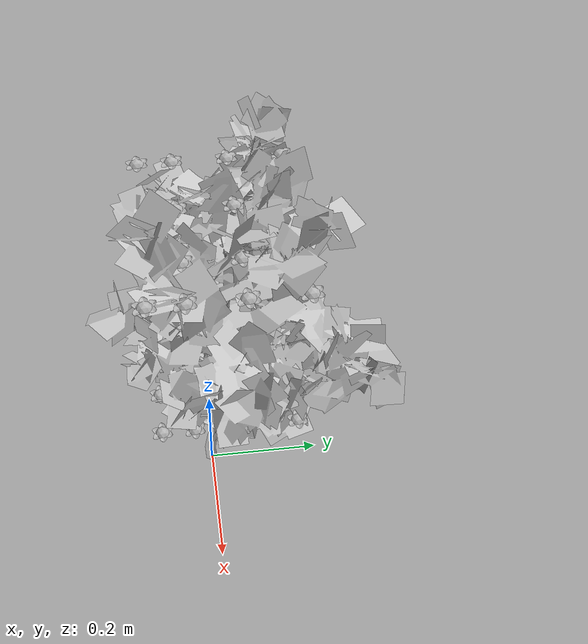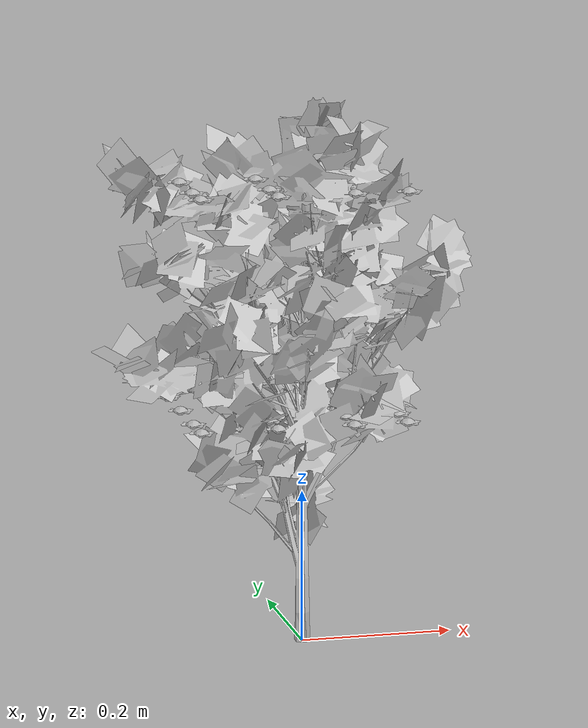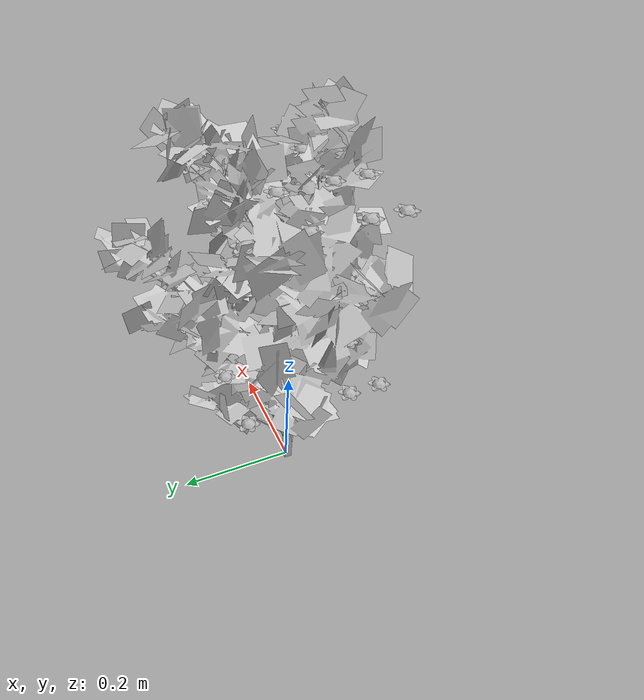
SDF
<?xml version="1.0" ?>
<sdf version="1.6">
  <model name="tree-flowers">
    <!--Skew-boundary-->
    <static>true</static>
    <link name="link"/>
    <include>
      <uri>model://tree-mesh</uri>
      <pose>0 0 0 0 0 0</pose>
    </include>
    <joint name="tree_joint" type="fixed">
      <child>tree-mesh::link</child>
      <parent>link</parent>
    </joint>
    <include>
      <name>bramble_0</name>
      <uri>model://bramble</uri>
      <pose> -0.15 -0.08 0.3 0 0 0</pose>
    </include>
    <joint name="flower_joint_0" type="fixed">
      <child>bramble_0::flower_link</child>
      <parent>link</parent>
    </joint>
    <include>
      <name>bramble_1</name>
      <uri>model://bramble</uri>
      <pose> -0.15 -0.08 0.6 0 0 0</pose>
    </include>
    <joint name="flower_joint_1" type="fixed">
      <child>bramble_1::flower_link</child>
      <parent>link</parent>
    </joint>
    <include>
      <name>bramble_2</name>
      <uri>model://bramble</uri>
      <pose> -0.15 -0.03 0.3 0 0 0</pose>
    </include>
    <joint name="flower_joint_2" type="fixed">
      <child>bramble_2::flower_link</child>
      <parent>link</parent>
    </joint>
    <include>
      <name>bramble_3</name>
      <uri>model://bramble</uri>
      <pose> -0.15 -0.03 0.6 0 0 0</pose>
    </include>
    <joint name="flower_joint_3" type="fixed">
      <child>bramble_3::flower_link</child>
      <parent>link</parent>
    </joint>
    <include>
      <name>bramble_4</name>
      <uri>model://bramble</uri>
      <pose> -0.15 0.05 0.3 0 0 0</pose>
    </include>
    <joint name="flower_joint_4" type="fixed">
      <child>bramble_4::flower_link</child>
      <parent>link</parent>
    </joint>
    <include>
      <name>bramble_5</name>
      <uri>model://bramble</uri>
      <pose> -0.15 0.05 0.6 0 0 0</pose>
    </include>
    <joint name="flower_joint_5" type="fixed">
      <child>bramble_5::flower_link</child>
      <parent>link</parent>
    </joint>
    <include>
      <name>bramble_6</name>
      <uri>model://bramble</uri>
      <pose> -0.15 0.13 0.3 0 0 0</pose>
    </include>
    <joint name="flower_joint_6" type="fixed">
      <child>bramble_6::flower_link</child>
      <parent>link</parent>
    </joint>
    <include>
      <name>bramble_7</name>
      <uri>model://bramble</uri>
      <pose> -0.15 0.13 0.6 0 0 0</pose>
    </include>
    <joint name="flower_joint_7" type="fixed">
      <child>bramble_7::flower_link</child>
      <parent>link</parent>
    </joint>
    <include>
      <name>bramble_8</name>
      <uri>model://bramble</uri>
      <pose> -0.05 -0.08 0.3 0 0 0</pose>
    </include>
    <joint name="flower_joint_8" type="fixed">
      <child>bramble_8::flower_link</child>
      <parent>link</parent>
    </joint>
    <include>
      <name>bramble_9</name>
      <uri>model://bramble</uri>
      <pose> -0.05 -0.08 0.6 0 0 0</pose>
    </include>
    <joint name="flower_joint_9" type="fixed">
      <child>bramble_9::flower_link</child>
      <parent>link</parent>
    </joint>
    <include>
      <name>bramble_10</name>
      <uri>model://bramble</uri>
      <pose> -0.05 -0.03 0.3 0 0 0</pose>
    </include>
    <joint name="flower_joint_10" type="fixed">
      <child>bramble_10::flower_link</child>
      <parent>link</parent>
    </joint>
    <include>
      <name>bramble_11</name>
      <uri>model://bramble</uri>
      <pose> -0.05 -0.03 0.6 0 0 0</pose>
    </include>
    <joint name="flower_joint_11" type="fixed">
      <child>bramble_11::flower_link</child>
      <parent>link</parent>
    </joint>
    <include>
      <name>bramble_12</name>
      <uri>model://bramble</uri>
      <pose> -0.05 0.05 0.3 0 0 0</pose>
    </include>
    <joint name="flower_joint_12" type="fixed">
      <child>bramble_12::flower_link</child>
      <parent>link</parent>
    </joint>
    <include>
      <name>bramble_13</name>
      <uri>model://bramble</uri>
      <pose> -0.05 0.05 0.6 0 0 0</pose>
    </include>
    <joint name="flower_joint_13" type="fixed">
      <child>bramble_13::flower_link</child>
      <parent>link</parent>
    </joint>
    <include>
      <name>bramble_14</name>
      <uri>model://bramble</uri>
      <pose> -0.05 0.13 0.3 0 0 0</pose>
    </include>
    <joint name="flower_joint_14" type="fixed">
      <child>bramble_14::flower_link</child>
      <parent>link</parent>
    </joint>
    <include>
      <name>bramble_15</name>
      <uri>model://bramble</uri>
      <pose> -0.05 0.13 0.6 0 0 0</pose>
    </include>
    <joint name="flower_joint_15" type="fixed">
      <child>bramble_15::flower_link</child>
      <parent>link</parent>
    </joint>
    <include>
      <name>bramble_16</name>
      <uri>model://bramble</uri>
      <pose> 0.05 -0.08 0.3 0 0 0</pose>
    </include>
    <joint name="flower_joint_16" type="fixed">
      <child>bramble_16::flower_link</child>
      <parent>link</parent>
    </joint>
    <include>
      <name>bramble_17</name>
      <uri>model://bramble</uri>
      <pose> 0.05 -0.08 0.6 0 0 0</pose>
    </include>
    <joint name="flower_joint_17" type="fixed">
      <child>bramble_17::flower_link</child>
      <parent>link</parent>
    </joint>
    <include>
      <name>bramble_18</name>
      <uri>model://bramble</uri>
      <pose> 0.05 -0.03 0.3 0 0 0</pose>
    </include>
    <joint name="flower_joint_18" type="fixed">
      <child>bramble_18::flower_link</child>
      <parent>link</parent>
    </joint>
    <include>
      <name>bramble_19</name>
      <uri>model://bramble</uri>
      <pose> 0.05 -0.03 0.6 0 0 0</pose>
    </include>
    <joint name="flower_joint_19" type="fixed">
      <child>bramble_19::flower_link</child>
      <parent>link</parent>
    </joint>
    <include>
      <name>bramble_20</name>
      <uri>model://bramble</uri>
      <pose> 0.05 0.05 0.3 0 0 0</pose>
    </include>
    <joint name="flower_joint_20" type="fixed">
      <child>bramble_20::flower_link</child>
      <parent>link</parent>
    </joint>
    <include>
      <name>bramble_21</name>
      <uri>model://bramble</uri>
      <pose> 0.05 0.05 0.6 0 0 0</pose>
    </include>
    <joint name="flower_joint_21" type="fixed">
      <child>bramble_21::flower_link</child>
      <parent>link</parent>
    </joint>
    <include>
      <name>bramble_22</name>
      <uri>model://bramble</uri>
      <pose> 0.05 0.13 0.3 0 0 0</pose>
    </include>
    <joint name="flower_joint_22" type="fixed">
      <child>bramble_22::flower_link</child>
      <parent>link</parent>
    </joint>
    <include>
      <name>bramble_23</name>
      <uri>model://bramble</uri>
      <pose> 0.05 0.13 0.6 0 0 0</pose>
    </include>
    <joint name="flower_joint_23" type="fixed">
      <child>bramble_23::flower_link</child>
      <parent>link</parent>
    </joint>
    <include>
      <name>bramble_24</name>
      <uri>model://bramble</uri>
      <pose> 0.12 -0.08 0.3 0 0 0</pose>
    </include>
    <joint name="flower_joint_24" type="fixed">
      <child>bramble_24::flower_link</child>
      <parent>link</parent>
    </joint>
    <include>
      <name>bramble_25</name>
      <uri>model://bramble</uri>
      <pose> 0.12 -0.08 0.6 0 0 0</pose>
    </include>
    <joint name="flower_joint_25" type="fixed">
      <child>bramble_25::flower_link</child>
      <parent>link</parent>
    </joint>
    <include>
      <name>bramble_26</name>
      <uri>model://bramble</uri>
      <pose> 0.12 -0.03 0.3 0 0 0</pose>
    </include>
    <joint name="flower_joint_26" type="fixed">
      <child>bramble_26::flower_link</child>
      <parent>link</parent>
    </joint>
    <include>
      <name>bramble_27</name>
      <uri>model://bramble</uri>
      <pose> 0.12 -0.03 0.6 0 0 0</pose>
    </include>
    <joint name="flower_joint_27" type="fixed">
      <child>bramble_27::flower_link</child>
      <parent>link</parent>
    </joint>
    <include>
      <name>bramble_28</name>
      <uri>model://bramble</uri>
      <pose> 0.12 0.05 0.3 0 0 0</pose>
    </include>
    <joint name="flower_joint_28" type="fixed">
      <child>bramble_28::flower_link</child>
      <parent>link</parent>
    </joint>
    <include>
      <name>bramble_29</name>
      <uri>model://bramble</uri>
      <pose> 0.12 0.05 0.6 0 0 0</pose>
    </include>
    <joint name="flower_joint_29" type="fixed">
      <child>bramble_29::flower_link</child>
      <parent>link</parent>
    </joint>
    <include>
      <name>bramble_30</name>
      <uri>model://bramble</uri>
      <pose> 0.12 0.13 0.3 0 0 0</pose>
    </include>
    <joint name="flower_joint_30" type="fixed">
      <child>bramble_30::flower_link</child>
      <parent>link</parent>
    </joint>
    <include>
      <name>bramble_31</name>
      <uri>model://bramble</uri>
      <pose> 0.12 0.13 0.6 0 0 0</pose>
    </include>
    <joint name="flower_joint_31" type="fixed">
      <child>bramble_31::flower_link</child>
      <parent>link</parent>
    </joint>
  </model>
</sdf>

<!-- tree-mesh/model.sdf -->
<sdf version="1.6">
  <model name="tree-mesh">
    <static>true</static>
    <link name="link">

      <collision name="collision">
        <geometry>
          <mesh>
            <uri>model://tree-mesh/meshes/new_tree.dae</uri>
            <scale>0.0625 0.0625 0.0625</scale>
          </mesh>
        </geometry>
      </collision>

      <!-- simplified collision for sake of speed since leaves shouldn't be blocking anyway -->

      <visual name="leaves">
        <geometry>
          <mesh>
            <uri>model://tree-mesh/meshes/leaves.dae</uri>
            <scale>0.0325 0.0325 0.0325</scale>
          </mesh>
        </geometry>
        <material>
          <script>
            <uri>model://tree-mesh/materials/scripts/</uri>
            <uri>model://tree-mesh/materials/textures/</uri>
            <name>NewTree/Branch</name>
          </script>
        </material>
      </visual>
      <visual name="bark">
        <geometry>
          <mesh>
            <uri>model://tree-mesh/meshes/bark.dae</uri>
            <scale>0.0325 0.0325 0.0325</scale>
          </mesh>
        </geometry>
        <material>
          <script>
            <uri>model://tree-mesh/materials/scripts/</uri>
            <uri>model://tree-mesh/materials/textures/</uri>
            <name>NewTree/Bark</name>
          </script>
        </material>
      </visual>
    </link>
  </model>
</sdf>

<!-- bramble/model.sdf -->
<sdf version="1.6">
  <model name="bramble">
    <static>true</static>
    <link name="flower_link">
      <collision name="body_collision">
        <geometry>
          <mesh>
            <uri>model://bramble/meshes/bramble.dae</uri>
            <scale>0.2 0.2 0.2</scale>
          </mesh>
        </geometry>
      </collision>
      <visual name="petals">
        <geometry>
          <mesh>
            <uri>model://bramble/meshes/bramble.dae</uri>
            <scale>0.2 0.2 0.2</scale>
            <submesh>
              <name>petal</name>
            </submesh>
          </mesh>
        </geometry>
        <material>
          <script>
            <uri>model://bramble/materials/scripts/</uri>
            <uri>model://bramble/materials/textures/</uri>
            <name>Bramble/Petal</name>
          </script>
        </material>
      </visual>
      <visual name="carpel">
        <geometry>
          <mesh>
            <uri>model://bramble/meshes/bramble.dae</uri>
            <scale>0.2 0.2 0.2</scale>
            <submesh>
              <name>carpel</name>
            </submesh>
          </mesh>
        </geometry>
        <material>
          <script>
            <uri>model://bramble/materials/scripts/</uri>
            <uri>model://bramble/materials/textures/</uri>
            <name>Bramble/Carpel</name>
          </script>
        </material>
      </visual>
      <visual name="stamen">
        <geometry>
          <mesh>
            <uri>model://bramble/meshes/bramble.dae</uri>
            <scale>0.2 0.2 0.2</scale>
            <submesh>
              <name>stamen</name>
            </submesh>
          </mesh>
        </geometry>
        <material>
          <script>
            <uri>model://bramble/materials/scripts/</uri>
            <uri>model://bramble/materials/textures/</uri>
            <name>Bramble/Stamen</name>
          </script>
        </material>
      </visual>
    </link>
  </model>
</sdf>
